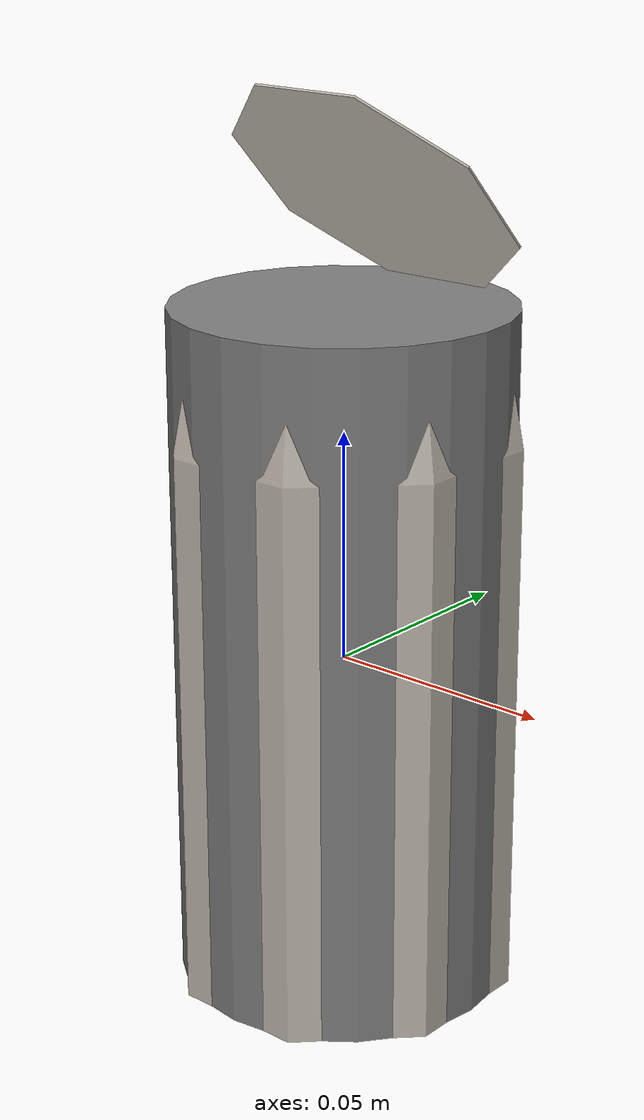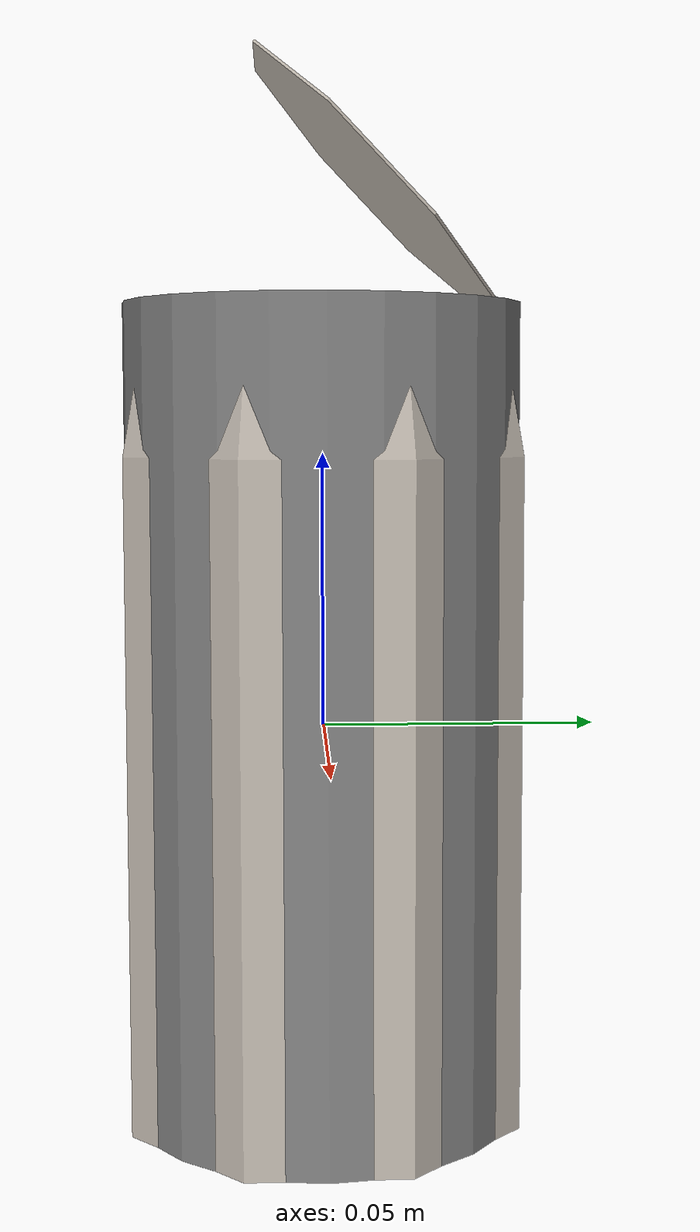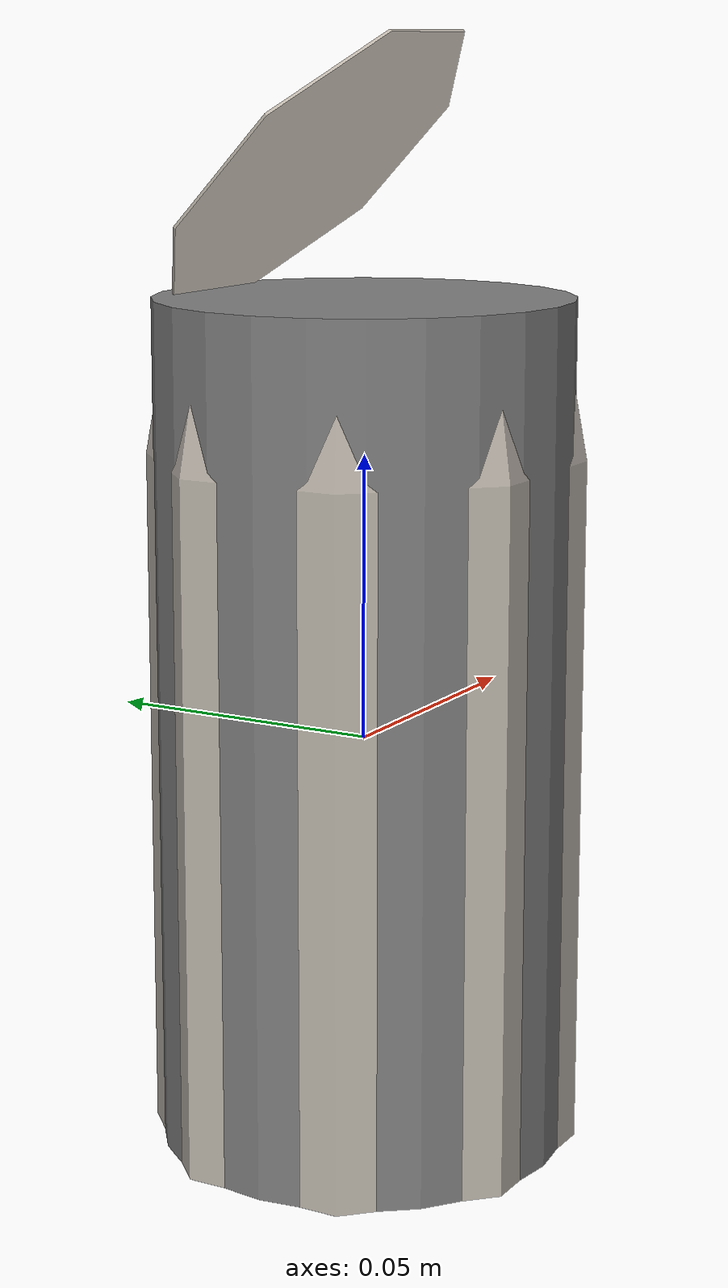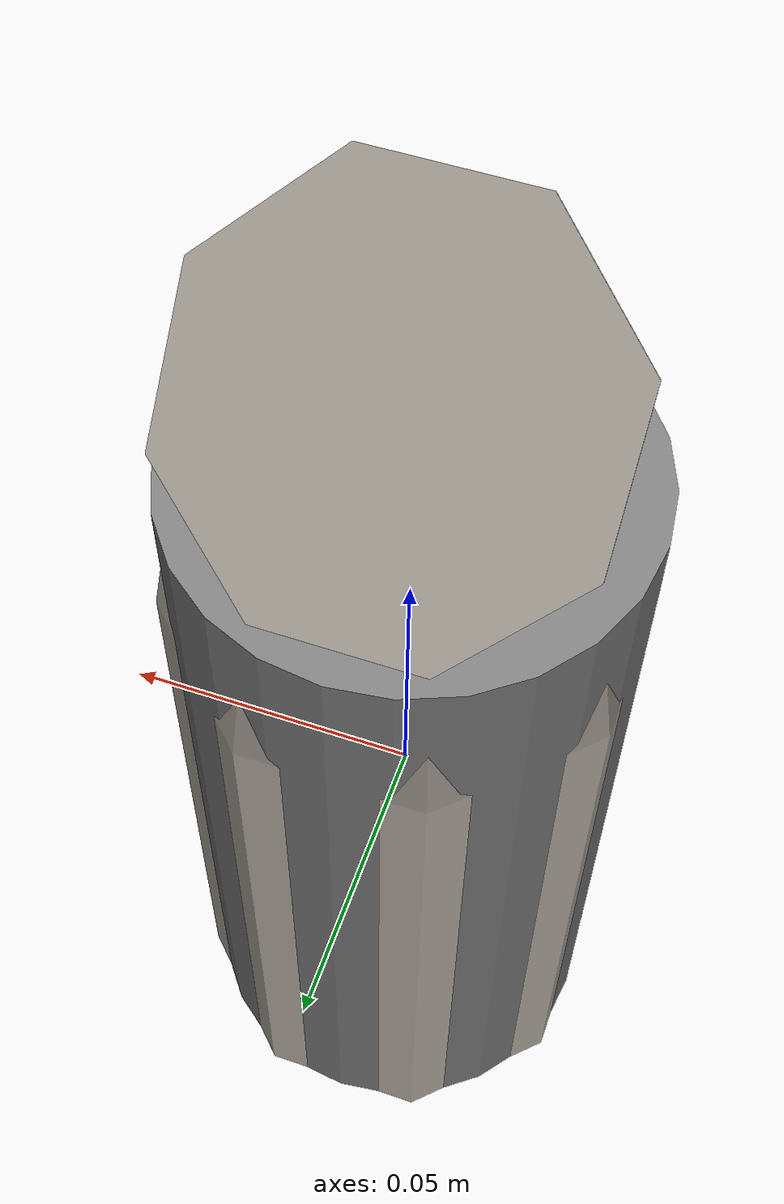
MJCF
<mujoco model="opened_empty_can_of_icetea">
  <asset>
    <mesh name="opened_empty_can_of_icetea_body_visual" file="../ifrjsc/opened_solidfy_body.obj" scale="1 1 1"/>
    <mesh name="opened_empty_can_of_icetea_lid_visual" file="../ifrjsc/opened_solidfy_lid.obj" scale="1 1 1"/>
    <texture name="opened_empty_can_of_icetea_tex" file="../ifrjsc/usd/MJCF/visuals/ifrjsc__base_link__diffuse.png" type="2d"/>
    <material name="opened_empty_can_of_icetea_mat" texture="opened_empty_can_of_icetea_tex" reflectance="0.5" texrepeat="1 1" texuniform="false"/>
  </asset>
  <worldbody>
    <body>
      <body name="object">
        <inertial pos="0 0 0.002326" mass="0.035" diaginertia="0.000076 0.000076 0.000023"/>
        <geom
          type="mesh"
          mesh="opened_empty_can_of_icetea_body_visual"
          material="opened_empty_can_of_icetea_mat"
          group="1"
          contype="0"
          conaffinity="0"
        />
        <geom
          type="mesh"
          mesh="opened_empty_can_of_icetea_lid_visual"
          material="opened_empty_can_of_icetea_mat"
          group="1"
          contype="0"
          conaffinity="0"
        />
        <geom
          type="cylinder"
          size="0.036 0.074623"
          pos="0 0 0.002326"
          group="0"
          solimp="0.998 0.998 0.001"
          solref="0.001 1"
        />
      </body>
      <site rgba="0 0 0 0" size="0.005" pos="0 0 -0.072297" name="bottom_site"/>
      <site rgba="0 0 0 0" size="0.005" pos="0 0 0.120861" name="top_site"/>
      <site rgba="0 0 0 0" size="0.005" pos="0.036 0 0.002326" name="horizontal_radius_site"/>
    </body>
  </worldbody>
</mujoco>
